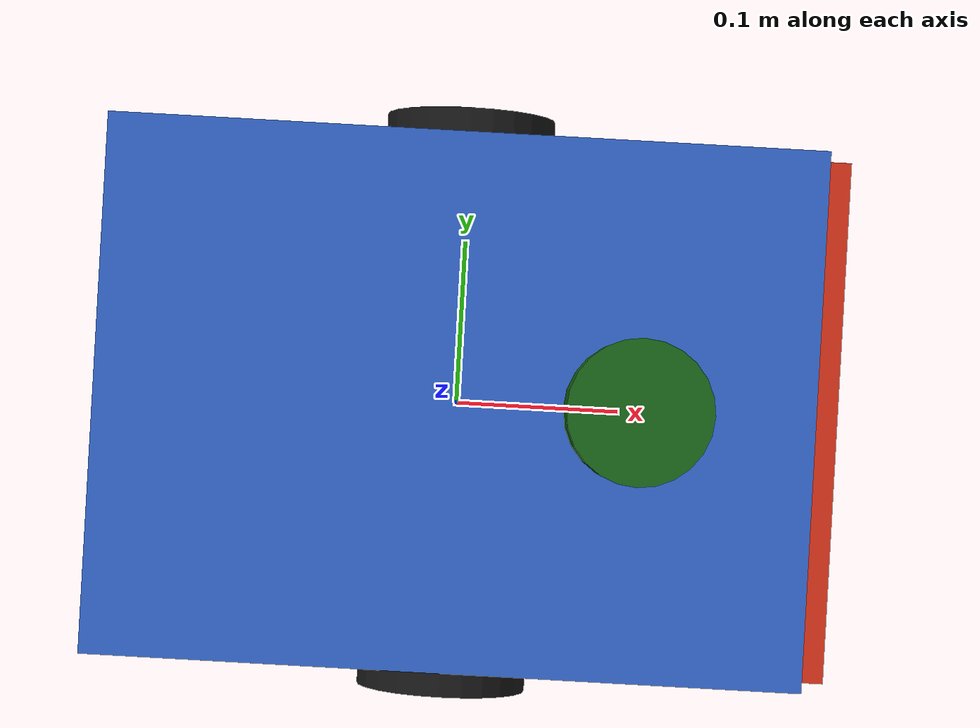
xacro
<?xml version="1.0"?>
<robot xmlns:xacro="http://www.ros.org/wiki/xacro" name="rover">

  <xacro:include filename="$(find rover_description)/urdf/rover.materials.xacro"/>
  <xacro:include filename="$(find rover_description)/urdf/rover.gazebo.xacro"/>

  <!-- Chassis dimensions. -->
  <xacro:property name="chassis_length" value="0.40"/>
  <xacro:property name="chassis_width"  value="0.30"/>
  <xacro:property name="chassis_height" value="0.10"/>
  <xacro:property name="chassis_mass"   value="6.0"/>

  <!-- Wheels. -->
  <xacro:property name="wheel_radius"     value="0.05"/>
  <xacro:property name="wheel_thickness"  value="0.04"/>
  <xacro:property name="wheel_separation" value="0.30"/>
  <xacro:property name="wheel_mass"       value="0.5"/>

  <!-- Caster (passive). -->
  <xacro:property name="caster_radius" value="0.025"/>
  <xacro:property name="caster_mass"   value="0.10"/>

  <!-- Sensor frame offsets relative to base_link. -->
  <xacro:property name="lidar_x"  value="0.10"/>
  <xacro:property name="lidar_z"  value="0.12"/>
  <xacro:property name="imu_z"    value="0.06"/>
  <xacro:property name="bumper_x" value="0.20"/>

  <!-- Common inertial generators. -->
  <xacro:macro name="box_inertia" params="m x y z">
    <inertial>
      <mass value="${m}"/>
      <inertia
        ixx="${m*(y*y + z*z)/12.0}" ixy="0.0" ixz="0.0"
        iyy="${m*(x*x + z*z)/12.0}" iyz="0.0"
        izz="${m*(x*x + y*y)/12.0}"/>
    </inertial>
  </xacro:macro>

  <xacro:macro name="cylinder_inertia" params="m r h">
    <inertial>
      <mass value="${m}"/>
      <inertia
        ixx="${m*(3*r*r + h*h)/12.0}" ixy="0.0" ixz="0.0"
        iyy="${m*(3*r*r + h*h)/12.0}" iyz="0.0"
        izz="${m*r*r/2.0}"/>
    </inertial>
  </xacro:macro>

  <xacro:macro name="sphere_inertia" params="m r">
    <inertial>
      <mass value="${m}"/>
      <inertia
        ixx="${2*m*r*r/5.0}" ixy="0.0" ixz="0.0"
        iyy="${2*m*r*r/5.0}" iyz="0.0"
        izz="${2*m*r*r/5.0}"/>
    </inertial>
  </xacro:macro>

  <!-- ============================== Base. ============================== -->
  <link name="base_footprint"/>

  <link name="base_link">
    <visual>
      <origin xyz="0 0 ${chassis_height/2.0}" rpy="0 0 0"/>
      <geometry>
        <box size="${chassis_length} ${chassis_width} ${chassis_height}"/>
      </geometry>
      <material name="rover_blue"/>
    </visual>
    <collision>
      <origin xyz="0 0 ${chassis_height/2.0}" rpy="0 0 0"/>
      <geometry>
        <box size="${chassis_length} ${chassis_width} ${chassis_height}"/>
      </geometry>
    </collision>
    <xacro:box_inertia m="${chassis_mass}"
                       x="${chassis_length}"
                       y="${chassis_width}"
                       z="${chassis_height}"/>
  </link>

  <joint name="base_footprint_joint" type="fixed">
    <parent link="base_footprint"/>
    <child link="base_link"/>
    <origin xyz="0 0 ${wheel_radius}" rpy="0 0 0"/>
  </joint>

  <!-- ============================== Wheels. ============================ -->
  <xacro:macro name="drive_wheel" params="prefix y_offset">
    <link name="${prefix}_wheel_link">
      <visual>
        <origin xyz="0 0 0" rpy="${pi/2.0} 0 0"/>
        <geometry>
          <cylinder radius="${wheel_radius}" length="${wheel_thickness}"/>
        </geometry>
        <material name="rover_dark"/>
      </visual>
      <collision>
        <origin xyz="0 0 0" rpy="${pi/2.0} 0 0"/>
        <geometry>
          <cylinder radius="${wheel_radius}" length="${wheel_thickness}"/>
        </geometry>
      </collision>
      <xacro:cylinder_inertia m="${wheel_mass}" r="${wheel_radius}" h="${wheel_thickness}"/>
    </link>

    <joint name="${prefix}_wheel_joint" type="continuous">
      <parent link="base_link"/>
      <child link="${prefix}_wheel_link"/>
      <origin xyz="0 ${y_offset} 0" rpy="0 0 0"/>
      <axis xyz="0 1 0"/>
      <dynamics damping="0.05" friction="0.05"/>
    </joint>
  </xacro:macro>

  <xacro:drive_wheel prefix="left"  y_offset="${ wheel_separation/2.0}"/>
  <xacro:drive_wheel prefix="right" y_offset="${-wheel_separation/2.0}"/>

  <!-- ============================== Caster. ============================ -->
  <link name="caster_link">
    <visual>
      <origin xyz="0 0 0" rpy="0 0 0"/>
      <geometry>
        <sphere radius="${caster_radius}"/>
      </geometry>
      <material name="rover_dark"/>
    </visual>
    <collision>
      <origin xyz="0 0 0" rpy="0 0 0"/>
      <geometry>
        <sphere radius="${caster_radius}"/>
      </geometry>
    </collision>
    <xacro:sphere_inertia m="${caster_mass}" r="${caster_radius}"/>
  </link>

  <joint name="caster_joint" type="fixed">
    <parent link="base_link"/>
    <child link="caster_link"/>
    <origin xyz="${chassis_length/2.0 - caster_radius} 0 ${-(wheel_radius - caster_radius)}"
            rpy="0 0 0"/>
  </joint>

  <!-- ============================== Sensors. =========================== -->
  <link name="lidar_link">
    <visual>
      <origin xyz="0 0 0" rpy="0 0 0"/>
      <geometry>
        <cylinder radius="0.04" length="0.04"/>
      </geometry>
      <material name="rover_lidar"/>
    </visual>
    <collision>
      <origin xyz="0 0 0" rpy="0 0 0"/>
      <geometry>
        <cylinder radius="0.04" length="0.04"/>
      </geometry>
    </collision>
    <xacro:cylinder_inertia m="0.10" r="0.04" h="0.04"/>
  </link>

  <joint name="lidar_joint" type="fixed">
    <parent link="base_link"/>
    <child link="lidar_link"/>
    <origin xyz="${lidar_x} 0 ${lidar_z}" rpy="0 0 0"/>
  </joint>

  <link name="imu_link">
    <visual>
      <origin xyz="0 0 0" rpy="0 0 0"/>
      <geometry>
        <box size="0.03 0.03 0.01"/>
      </geometry>
      <material name="rover_imu"/>
    </visual>
    <collision>
      <origin xyz="0 0 0" rpy="0 0 0"/>
      <geometry>
        <box size="0.03 0.03 0.01"/>
      </geometry>
    </collision>
    <xacro:box_inertia m="0.05" x="0.03" y="0.03" z="0.01"/>
  </link>

  <joint name="imu_joint" type="fixed">
    <parent link="base_link"/>
    <child link="imu_link"/>
    <origin xyz="0 0 ${imu_z}" rpy="0 0 0"/>
  </joint>

  <link name="contact_link">
    <visual>
      <origin xyz="0 0 0" rpy="0 0 0"/>
      <geometry>
        <box size="0.04 ${chassis_width} 0.05"/>
      </geometry>
      <material name="rover_warn"/>
    </visual>
    <collision>
      <origin xyz="0 0 0" rpy="0 0 0"/>
      <geometry>
        <box size="0.04 ${chassis_width} 0.05"/>
      </geometry>
    </collision>
    <xacro:box_inertia m="0.10" x="0.04" y="${chassis_width}" z="0.05"/>
  </link>

  <joint name="contact_joint" type="fixed">
    <parent link="base_link"/>
    <child link="contact_link"/>
    <origin xyz="${bumper_x} 0 ${chassis_height/2.0 - 0.025}" rpy="0 0 0"/>
  </joint>

  <!-- Gazebo plugins and sensor configuration. -->
  <xacro:rover_gazebo
    wheel_separation="${wheel_separation}"
    wheel_radius="${wheel_radius}"/>

</robot>

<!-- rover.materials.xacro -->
<robot xmlns:xacro="http://www.ros.org/wiki/xacro">
  <material name="rover_blue">
    <color rgba="0.20 0.40 0.80 1.0"/>
  </material>
  <material name="rover_dark">
    <color rgba="0.10 0.10 0.10 1.0"/>
  </material>
  <material name="rover_lidar">
    <color rgba="0.10 0.40 0.10 1.0"/>
  </material>
  <material name="rover_imu">
    <color rgba="0.80 0.80 0.10 1.0"/>
  </material>
  <material name="rover_warn">
    <color rgba="0.85 0.20 0.10 1.0"/>
  </material>
</robot>
